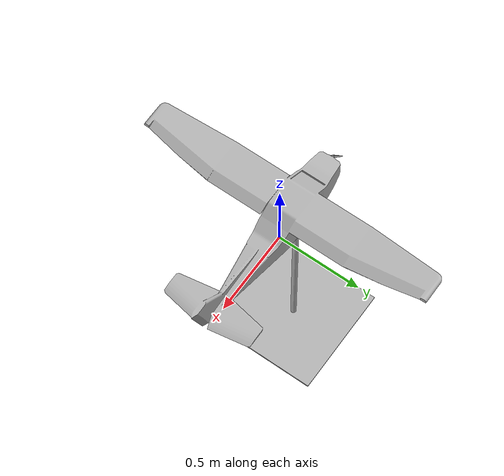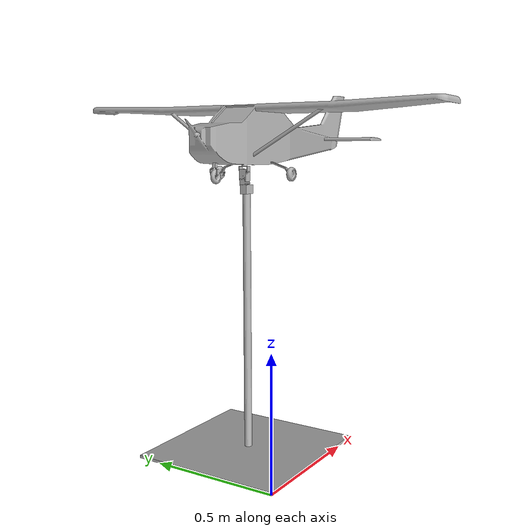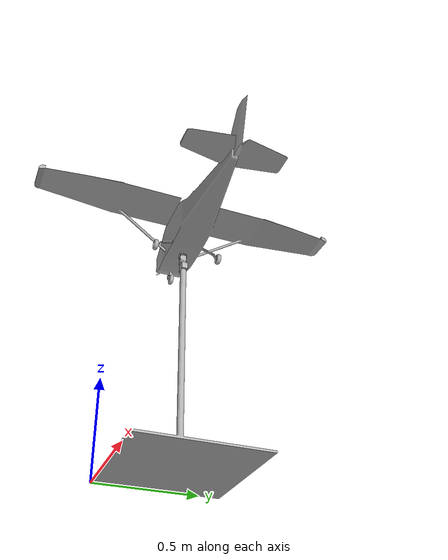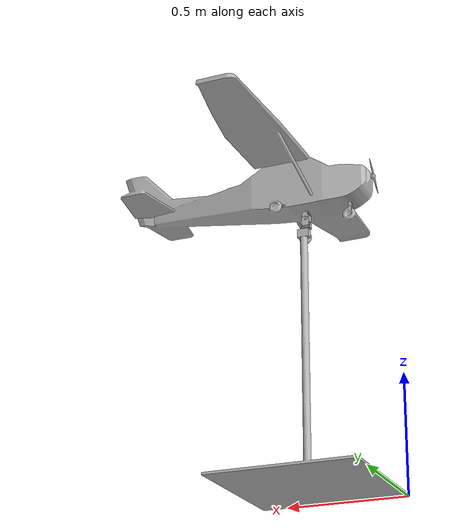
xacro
<?xml version="1.0" ?>
<robot name="aircraft_simulation" xmlns:xacro="http://www.ros.org/wiki/xacro">

<xacro:include filename="$(find aircraft_simulation_description)/urdf/materials.xacro" />
<xacro:include filename="$(find aircraft_simulation_description)/urdf/aircraft_simulation.trans" />
<xacro:include filename="$(find aircraft_simulation_description)/urdf/aircraft_simulation.gazebo" />

<link name="base_link">
  <inertial>
    <origin xyz="0.3000000000000002 0.30000000000000016 0.0878825646211479" rpy="0 0 0"/>
    <mass value="10.0"/>
    <inertia ixx="2.493593" iyy="2.493593" izz="1.696224" ixy="0.0" iyz="0.0" ixz="0.0"/>
  </inertial>
  <visual>
    <origin xyz="0 0 0" rpy="0 0 0"/>
    <geometry>
      <mesh filename="package://aircraft_simulation_description/meshes/base_link.stl" scale="0.001 0.001 0.001"/>
    </geometry>
    <material name="silver"/>
  </visual>
  <collision>
    <origin xyz="0 0 0" rpy="0 0 0"/>
    <geometry>
      <mesh filename="package://aircraft_simulation_description/meshes/base_link.stl" scale="0.001 0.001 0.001"/>
    </geometry>
  </collision>
</link>

<link name="servo_1">
  <inertial>
    <origin xyz="-0.00019792100304494298 7.373135435528866e-11 0.017300946486448643" rpy="0 0 0"/>
    <mass value="0.35964093284808746"/>
    <inertia ixx="0.1" iyy="0.1" izz="0.1" ixy="0.1" iyz="-0.1" ixz="0.1"/>
  </inertial>
  <visual>
    <origin xyz="-0.3 -0.3 -1.01" rpy="0 0 0"/>
    <geometry>
      <mesh filename="package://aircraft_simulation_description/meshes/servo_1.stl" scale="0.001 0.001 0.001"/>
    </geometry>
    <material name="silver"/>
  </visual>
  <collision>
    <origin xyz="-0.3 -0.3 -1.01" rpy="0 0 0"/>
    <geometry>
      <mesh filename="package://aircraft_simulation_description/meshes/servo_1.stl" scale="0.001 0.001 0.001"/>
    </geometry>
  </collision>
</link>

<link name="plate_1">
  <inertial>
    <origin xyz="1.199040866595169e-14 4.470370740250473e-09 0.006509750924387214" rpy="0 0 0"/>
    <mass value="0.025445288850836596"/>
    <inertia ixx="0.1" iyy="0.1" izz="0.1" ixy="0.1" iyz="0.1" ixz="0.1"/>
  </inertial>
  <visual>
    <origin xyz="-0.288 -0.3 -1.046" rpy="0 0 0"/>
    <geometry>
      <mesh filename="package://aircraft_simulation_description/meshes/plate_1.stl" scale="0.001 0.001 0.001"/>
    </geometry>
    <material name="silver"/>
  </visual>
  <collision>
    <origin xyz="-0.288 -0.3 -1.046" rpy="0 0 0"/>
    <geometry>
      <mesh filename="package://aircraft_simulation_description/meshes/plate_1.stl" scale="0.001 0.001 0.001"/>
    </geometry>
  </collision>
</link>

<link name="servo_2">
  <inertial>
    <origin xyz="0.016249937498381883 -5.2205578548014664e-05 0.015442293450448563" rpy="0 0 0"/>
    <mass value="0.24400357326508137"/>
    <inertia ixx="0.1" iyy="0.1" izz="0.1" ixy="0.1" iyz="0.1" ixz="-0.1"/>
  </inertial>
  <visual>
    <origin xyz="-0.27175 -0.3 -1.068" rpy="0 0 0"/>
    <geometry>
      <mesh filename="package://aircraft_simulation_description/meshes/servo_2.stl" scale="0.001 0.001 0.001"/>
    </geometry>
    <material name="silver"/>
  </visual>
  <collision>
    <origin xyz="-0.27175 -0.3 -1.068" rpy="0 0 0"/>
    <geometry>
      <mesh filename="package://aircraft_simulation_description/meshes/servo_2.stl" scale="0.001 0.001 0.001"/>
    </geometry>
  </collision>
</link>

<link name="plate_2">
  <inertial>
    <origin xyz="-6.250161160847867e-08 0.01625000447034125 0.015490249075615914" rpy="0 0 0"/>
    <mass value="0.025445288850836953"/>
    <inertia ixx="0.1" iyy="0.1" izz="0.1" ixy="-0.1" iyz="-0.1" ixz="0.1"/>
  </inertial>
  <visual>
    <origin xyz="-0.288 -0.28375 -1.092" rpy="0 0 0"/>
    <geometry>
      <mesh filename="package://aircraft_simulation_description/meshes/plate_2.stl" scale="0.001 0.001 0.001"/>
    </geometry>
    <material name="silver"/>
  </visual>
  <collision>
    <origin xyz="-0.288 -0.28375 -1.092" rpy="0 0 0"/>
    <geometry>
      <mesh filename="package://aircraft_simulation_description/meshes/plate_2.stl" scale="0.001 0.001 0.001"/>
    </geometry>
  </collision>
</link>

<link name="airplane_1">
  <inertial>
    <origin xyz="0.11615657909570432 8.056922562560409e-06 0.13046168075004094" rpy="0 0 0"/>
    <mass value="1.0"/>
    <inertia ixx="0.1" iyy="0.1" izz="0.1" ixy="-0.1" iyz="-0.1" ixz="0.1"/>
  </inertial>
  <visual>
    <origin xyz="-0.288 -0.3 -1.114" rpy="0 0 0"/>
    <geometry>
      <mesh filename="package://aircraft_simulation_description/meshes/airplane_1.stl" scale="0.001 0.001 0.001"/>
    </geometry>
    <material name="silver"/>
  </visual>
  <collision>
    <origin xyz="-0.288 -0.3 -1.114" rpy="0 0 0"/>
    <geometry>
      <mesh filename="package://aircraft_simulation_description/meshes/airplane_1.stl" scale="0.001 0.001 0.001"/>
    </geometry>
  </collision>
</link>

<joint name="plane_joint" type="fixed">
  <origin xyz="0.3 0.3 1.01" rpy="0 0 0"/>
  <parent link="base_link"/>
  <child link="servo_1"/>
</joint>

<joint name="yaw_joint" type="revolute">
  <origin xyz="-0.012 0.0 0.036" rpy="0 0 0"/>
  <parent link="servo_1"/>
  <child link="plate_1"/>
  <axis xyz="0.0 0.0 -1.0"/>
  <limit velocity="4.8" effort="1" lower="${-pi*0.5}" upper="${pi*0.5}" />
</joint>

<joint name="roll_joint" type="revolute">
  <origin xyz="-0.01625 0.0 0.022" rpy="0 0 0"/>
  <parent link="plate_1"/>
  <child link="servo_2"/>
  <axis xyz="-1.0 0.0 -0.0"/>
  <limit velocity="4.8" effort="1" lower="${-pi*0.5}" upper="${pi*0.5}" />
</joint>

<joint name="pitch_joint" type="revolute">
  <origin xyz="0.01625 -0.01625 0.024" rpy="0 0 0"/>
  <parent link="servo_2"/>
  <child link="plate_2"/>
  <axis xyz="0.0 1.0 0.0"/>
  <limit velocity="4.8" effort="1" lower="${-pi*0.5}" upper="${pi*0.5}" />
</joint>

<joint name="base_joint" type="fixed">
  <origin xyz="0.0 0.01625 0.022" rpy="0 0 0"/>
  <parent link="plate_2"/>
  <child link="airplane_1"/>
</joint>

</robot>

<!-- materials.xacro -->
<robot name="aircraft_simulation" xmlns:xacro="http://www.ros.org/wiki/xacro" >

<material name="silver">
  <color rgba="0.700 0.700 0.700 1.000"/>
</material>

</robot>
